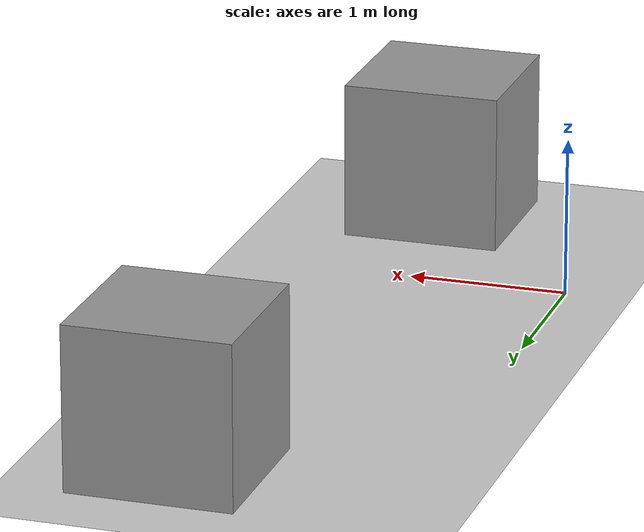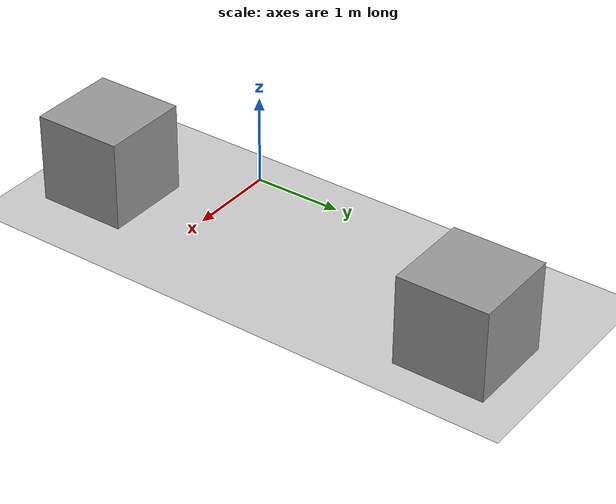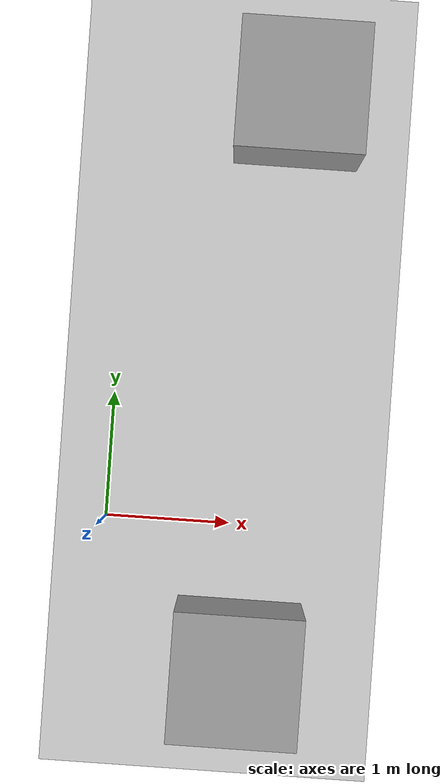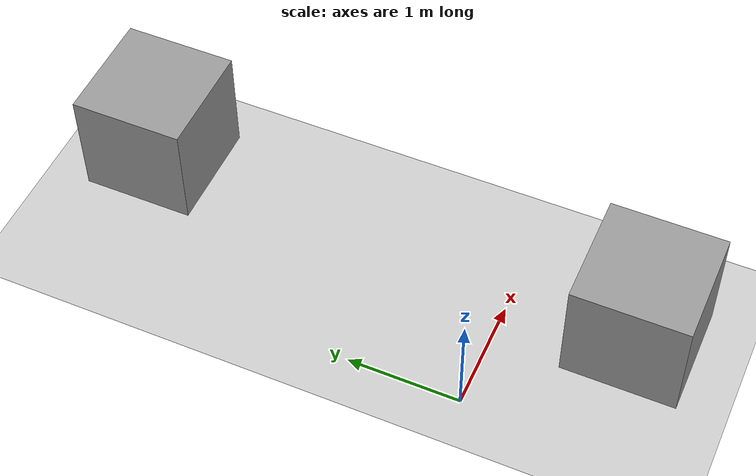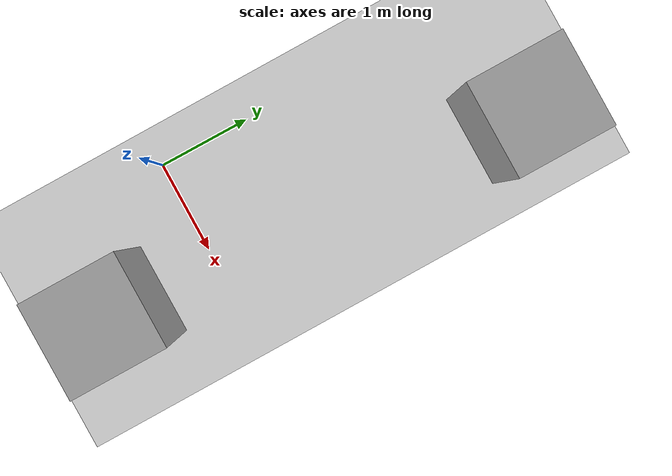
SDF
<sdf version="1.9">
 <world name="default">
  <model name="ground_plane">
   <static>true</static>
   <link name="link">
    <collision name="collision">
     <geometry><plane><normal>0 0 1</normal><size>100 100</size></plane></geometry>
     <surface><friction><ode><mu>100</mu><mu2>50</mu2></ode></friction></surface>
    </collision>
    <visual name="visual">
     <cast_shadows>false</cast_shadows>
     <geometry><plane><normal>0 0 1</normal><size>100 100</size></plane></geometry>
     <material>
      <script><uri>file://media/materials/scripts/gazebo.material</uri><name>Gazebo/Grey</name></script>
     </material>
    </visual>
   </link>
  </model>
  <model name="unit_box_1">
   <pose>1.33192 3.4225400000000001 0.49999500000000002 -1.0000000000000001e-05 0 0</pose>
   <link name="link">
    <inertial>
     <mass>1</mass>
     <inertia>
      <ixx>0.16666700000000001</ixx>
      <ixy>0</ixy>
      <ixz>0</ixz>
      <iyy>0.16666700000000001</iyy>
      <iyz>0</iyz>
      <izz>0.16666700000000001</izz>
     </inertia>
    </inertial>
    <collision name="collision"><geometry><box><size>1 1 1</size></box></geometry></collision>
    <visual name="visual">
     <geometry><box><size>1 1 1</size></box></geometry>
     <material>
      <script><name>Gazebo/Grey</name><uri>file://media/materials/scripts/gazebo.material</uri></script>
     </material>
    </visual>
   </link>
  </model>
  <model name="unit_box_2">
   <pose>1.1278300000000001 -1.1120699999999999 0.5 0 0 0</pose>
   <link name="link">
    <inertial>
     <mass>1</mass>
     <inertia>
      <ixx>0.16666700000000001</ixx>
      <ixy>0</ixy>
      <ixz>0</ixz>
      <iyy>0.16666700000000001</iyy>
      <iyz>0</iyz>
      <izz>0.16666700000000001</izz>
     </inertia>
    </inertial>
    <collision name="collision"><geometry><box><size>1 1 1</size></box></geometry></collision>
    <visual name="visual">
     <geometry><box><size>1 1 1</size></box></geometry>
     <material>
      <script><name>Gazebo/Grey</name><uri>file://media/materials/scripts/gazebo.material</uri></script>
     </material>
    </visual>
   </link>
  </model>
 </world>
</sdf>
